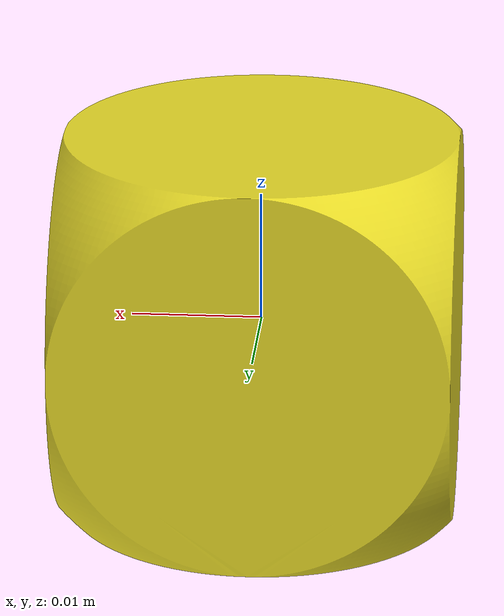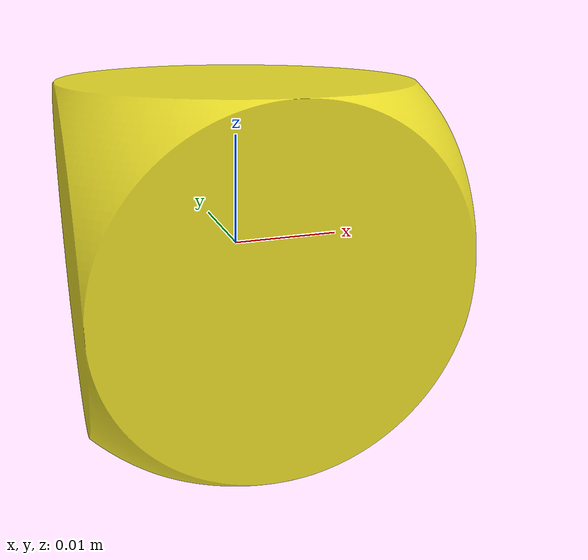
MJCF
<mujoco model="dice_yellow">
  <compiler angle="radian" meshdir="../meshes"/>

  <default>
    <default class="rigid_sticky">
      <geom solref="0.001 1"
            solimp="0.95 0.99 0.0005"
            friction="1.8 0.5 0.0005"/>
    </default>
    <default class="rigid_normal">
      <geom solref="0.001 1"
            solimp="0.95 0.99 0.0005"
            friction="1.0 0.3 0.0001"/>
    </default>
    <default class="rigid_slippy">
      <geom solref="0.001 1"
            solimp="0.95 0.99 0.0005"
            friction="0.6 0.2 0.0001"/>
    </default>
    <default class="custom">
      <geom solref="0.001 0.45"
            solimp="0.95 0.99 0.0005"
            friction="1.0 0.001 0.00001"/>
    </default>
  </default>

  <asset>
    <mesh name="body" file="dice_yellow_visual.obj" />
    <texture type="2d" name="dice_yellow_tex" file="../meshes/YellowDiceTexture.png"/>
    <material name="dice_yellow_mat" texture="dice_yellow_tex" rgba="1 1 1 1"/>
  </asset>
  <worldbody>
    <body name="base_link" pos="0 0 0">
      <joint name="root" type="free" damping="0.00003"/>
      <geom
        type="mesh"
        class="custom"
        mesh="body"
        material="dice_yellow_mat"
        mass="0.018"
        contype="1"
        conaffinity="1"
        group="1"
        density="0"/>
    </body>
  </worldbody>

  <sensor>
    <subtreecom    name="subtreecom"    body="base_link"/>
    <subtreelinvel name="subtreelinvel" body="base_link"/>
    <subtreeangmom name="subtreeangmom" body="base_link"/>
  </sensor>

</mujoco>
